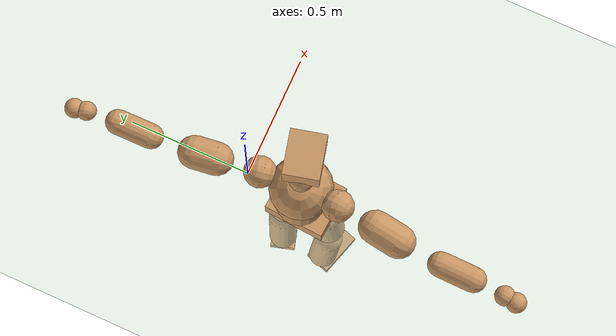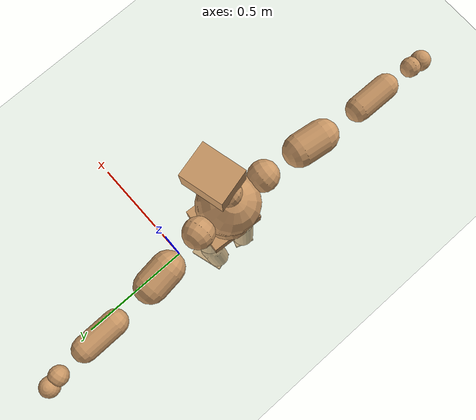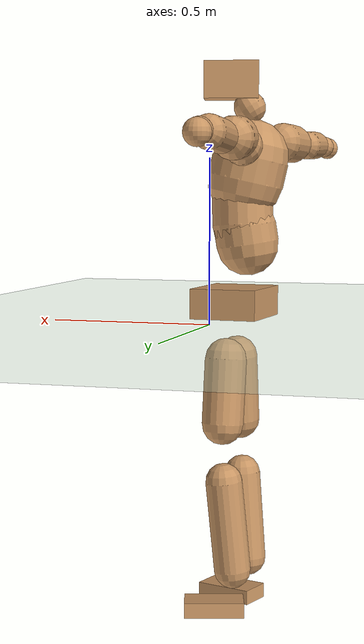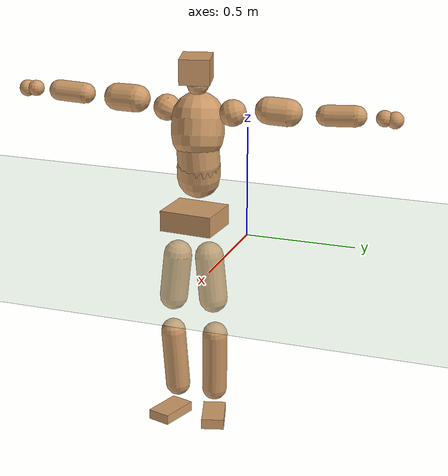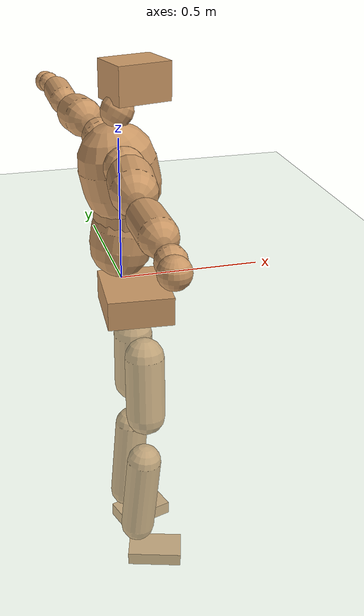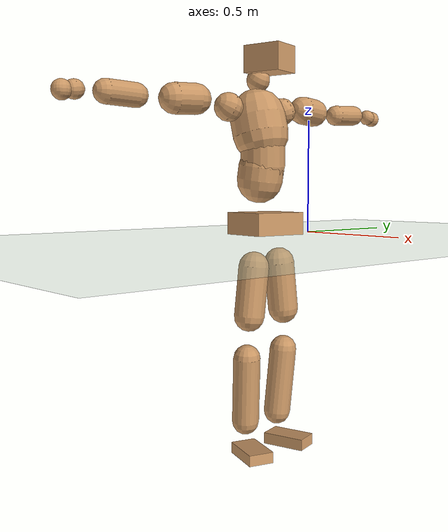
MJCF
<mujoco model="humanoid">
  <compiler coordinate="local" angle="radian"/>
  <default>
    <joint damping="0.0" armature="0.01" stiffness="0.0" limited="true"/>
    <geom conaffinity="1" condim="3" contype="7" margin="0.001" rgba="0.8 0.6 .4 1"/>
  </default>
  <asset>
    <texture type="skybox" builtin="gradient" rgb1=".4 .5 .6" rgb2="0 0 0" width="100" height="100"/>
    <texture builtin="flat" height="1278" mark="cross" markrgb="1 1 1" name="texgeom" random="0.01" rgb1="0.8 0.6 0.4" rgb2="0.8 0.6 0.4" type="cube" width="127"/>
    <texture builtin="checker" height="100" name="texplane" rgb1="0 0 0" rgb2="0.8 0.8 0.8" type="2d" width="100"/>
    <material name="MatPlane" reflectance="0.5" shininess="1" specular="1" texrepeat="60 60" texture="texplane"/>
    <material name="geom" texture="texgeom" texuniform="true"/>
  </asset>
  <worldbody>
    <light cutoff="100" diffuse="1 1 1" dir="-0 0 -1.3" directional="true" exponent="1" pos="0 0 1.3" specular=".1 .1 .1"/>
    <geom conaffinity="1" condim="3" name="floor" pos="0 0 0" rgba="0.8 0.9 0.8 1" size="100 100 .2" type="plane" material="MatPlane"/>
    <body name="Pelvis" pos="-0.0009 -0.2565 0.0553">
      <freejoint name="Pelvis"/>
      <geom type="box" contype="1" conaffinity="1" density="5359.374651" pos="-0.0102 0.0007 -0.0073" size="0.1064 0.1237 0.0477" quat="0.9994 0.0000 0.0000 -0.0351" name="Pelvis"/>
      <body name="L_Hip" pos="-0.0036 0.0656 -0.0861">
        <joint name="L_Hip_x" type="hinge" pos="0 0 0" axis="1 0 0" stiffness="1600" damping="160" armature="0.02" range="-180.0000 180.0000"/>
        <joint name="L_Hip_y" type="hinge" pos="0 0 0" axis="0 1 0" stiffness="1600" damping="160" armature="0.02" range="-180.0000 180.0000"/>
        <joint name="L_Hip_z" type="hinge" pos="0 0 0" axis="0 0 1" stiffness="1600" damping="160" armature="0.02" range="-180.0000 180.0000"/>
        <geom type="capsule" contype="1" conaffinity="1" density="2040.816327" size="0.0658" fromto="0.0018 0.0101 -0.0952 0.0058 0.0320 -0.3008" name="L_Hip"/>
        <body name="L_Knee" pos="0.0076 0.0422 -0.3961">
          <joint name="L_Knee_x" type="hinge" pos="0 0 0" axis="1 0 0" stiffness="1600" damping="160" armature="0.02" range="-180.0000 180.0000"/>
          <joint name="L_Knee_y" type="hinge" pos="0 0 0" axis="0 1 0" stiffness="1600" damping="160" armature="0.02" range="-180.0000 180.0000"/>
          <joint name="L_Knee_z" type="hinge" pos="0 0 0" axis="0 0 1" stiffness="1600" damping="160" armature="0.02" range="-180.0000 180.0000"/>
          <geom type="capsule" contype="1" conaffinity="1" density="1234.567901" size="0.0585" fromto="-0.0079 -0.0033 -0.0881 -0.0339 -0.0143 -0.3764" name="L_Knee"/>
          <body name="L_Ankle" pos="-0.0418 -0.0176 -0.4645">
            <joint name="L_Ankle_x" type="hinge" pos="0 0 0" axis="1 0 0" stiffness="1600" damping="160" armature="0.02" range="-180.0000 180.0000"/>
            <joint name="L_Ankle_y" type="hinge" pos="0 0 0" axis="0 1 0" stiffness="1600" damping="160" armature="0.02" range="-180.0000 180.0000"/>
            <joint name="L_Ankle_z" type="hinge" pos="0 0 0" axis="0 0 1" stiffness="1600" damping="160" armature="0.02" range="-180.0000 180.0000"/>
            <geom type="box" contype="1" conaffinity="1" density="1000.000008" pos="0.0646 0.0192 -0.0317" size="0.0946 0.0525 0.0244" quat="0.9896 0.0000 0.0000 0.1440" name="L_Ankle"/>
            <body name="L_Toe" pos="0.1291 0.0384 -0.0633">
              <joint name="L_Toe_x" type="hinge" pos="0 0 0" axis="1 0 0" stiffness="1000" damping="100" armature="0.02" range="-180.0000 180.0000"/>
              <joint name="L_Toe_y" type="hinge" pos="0 0 0" axis="0 1 0" stiffness="1000" damping="100" armature="0.02" range="-180.0000 180.0000"/>
              <joint name="L_Toe_z" type="hinge" pos="0 0 0" axis="0 0 1" stiffness="1000" damping="100" armature="0.02" range="-180.0000 180.0000"/>
              <geom type="box" contype="1" conaffinity="1" density="8990638.942891" pos="0.0000 0.0000 0.0314" size="0.001 0.0026 0.0012" quat="0.9889 0.0000 0.0000 0.1489" name="L_Toe"/>
            </body>
          </body>
        </body>
      </body>
      <body name="R_Hip" pos="0.0017 -0.0665 -0.0955">
        <joint name="R_Hip_x" type="hinge" pos="0 0 0" axis="1 0 0" stiffness="1600" damping="160" armature="0.02" range="-180.0000 180.0000"/>
        <joint name="R_Hip_y" type="hinge" pos="0 0 0" axis="0 1 0" stiffness="1600" damping="160" armature="0.02" range="-180.0000 180.0000"/>
        <joint name="R_Hip_z" type="hinge" pos="0 0 0" axis="0 0 1" stiffness="1600" damping="160" armature="0.02" range="-180.0000 180.0000"/>
        <geom type="capsule" contype="1" conaffinity="1" density="2040.816327" size="0.0653" fromto="-0.0012 -0.0104 -0.0947 -0.0038 -0.0337 -0.3059" name="R_Hip"/>
        <body name="R_Knee" pos="-0.005 -0.0442 -0.4006">
          <joint name="R_Knee_x" type="hinge" pos="0 0 0" axis="1 0 0" stiffness="1600" damping="160" armature="0.02" range="-180.0000 180.0000"/>
          <joint name="R_Knee_y" type="hinge" pos="0 0 0" axis="0 1 0" stiffness="1600" damping="160" armature="0.02" range="-180.0000 180.0000"/>
          <joint name="R_Knee_z" type="hinge" pos="0 0 0" axis="0 0 1" stiffness="1600" damping="160" armature="0.02" range="-180.0000 180.0000"/>
          <geom type="capsule" contype="1" conaffinity="1" density="1234.567901" size="0.0582" fromto="-0.0072 0.0039 -0.0879 -0.0303 0.0167 -0.3715" name="R_Knee"/>
          <body name="R_Ankle" pos="-0.0374 0.0206 -0.4593">
            <joint name="R_Ankle_x" type="hinge" pos="0 0 0" axis="1 0 0" stiffness="1600" damping="160" armature="0.02" range="-180.0000 180.0000"/>
            <joint name="R_Ankle_y" type="hinge" pos="0 0 0" axis="0 1 0" stiffness="1600" damping="160" armature="0.02" range="-180.0000 180.0000"/>
            <joint name="R_Ankle_z" type="hinge" pos="0 0 0" axis="0 0 1" stiffness="1600" damping="160" armature="0.02" range="-180.0000 180.0000"/>
            <geom type="box" contype="1" conaffinity="1" density="999.999962" pos="0.0673 -0.0205 -0.0336" size="0.0937 0.055 0.0233" quat="0.9891 0.0000 0.0000 -0.1473" name="R_Ankle"/>
            <body name="R_Toe" pos="0.1346 -0.041 -0.0672">
              <joint name="R_Toe_x" type="hinge" pos="0 0 0" axis="1 0 0" stiffness="1000" damping="100" armature="0.02" range="-180.0000 180.0000"/>
              <joint name="R_Toe_y" type="hinge" pos="0 0 0" axis="0 1 0" stiffness="1000" damping="100" armature="0.02" range="-180.0000 180.0000"/>
              <joint name="R_Toe_z" type="hinge" pos="0 0 0" axis="0 0 1" stiffness="1000" damping="100" armature="0.02" range="-180.0000 180.0000"/>
              <geom type="box" contype="1" conaffinity="1" density="8356018.774712" pos="0.0000 0.0000 0.0340" size="0.0012 0.0026 0.0012" quat="0.9904 0.0000 0.0000 -0.1386" name="R_Toe"/>
            </body>
          </body>
        </body>
      </body>
      <body name="Torso" pos="-0.0594 0.0052 0.1376">
        <joint name="Torso_x" type="hinge" pos="0 0 0" axis="1 0 0" stiffness="2000" damping="200" armature="0.02" range="-180.0000 180.0000"/>
        <joint name="Torso_y" type="hinge" pos="0 0 0" axis="0 1 0" stiffness="2000" damping="200" armature="0.02" range="-180.0000 180.0000"/>
        <joint name="Torso_z" type="hinge" pos="0 0 0" axis="0 0 1" stiffness="2000" damping="200" armature="0.02" range="-180.0000 180.0000"/>
        <geom type="capsule" contype="1" conaffinity="1" density="2040.816327" size="0.0993" fromto="0.0150 0.0034 0.0981 0.0062 0.0014 0.0406" name="Torso"/>
        <body name="Spine" pos="0.0212 0.0048 0.1387">
          <joint name="Spine_x" type="hinge" pos="0 0 0" axis="1 0 0" stiffness="2000" damping="200" armature="0.02" range="-180.0000 180.0000"/>
          <joint name="Spine_y" type="hinge" pos="0 0 0" axis="0 1 0" stiffness="2000" damping="200" armature="0.02" range="-180.0000 180.0000"/>
          <joint name="Spine_z" type="hinge" pos="0 0 0" axis="0 0 1" stiffness="2000" damping="200" armature="0.02" range="-180.0000 180.0000"/>
          <geom type="capsule" contype="1" conaffinity="1" density="2040.816327" size="0.0968" fromto="0.0046 -0.0057 0.0965 -0.0019 0.0024 -0.0405" name="Spine"/>
          <body name="Chest" pos="0.0027 -0.0033 0.0561">
            <joint name="Chest_x" type="hinge" pos="0 0 0" axis="1 0 0" stiffness="2000" damping="200" armature="0.02" range="-180.0000 180.0000"/>
            <joint name="Chest_y" type="hinge" pos="0 0 0" axis="0 1 0" stiffness="2000" damping="200" armature="0.02" range="-180.0000 180.0000"/>
            <joint name="Chest_z" type="hinge" pos="0 0 0" axis="0 0 1" stiffness="2000" damping="200" armature="0.02" range="-180.0000 180.0000"/>
            <geom type="capsule" contype="1" conaffinity="1" density="2040.816327" size="0.1204" fromto="-0.0256 -0.0060 0.1175 -0.0094 -0.0022 0.0432" name="Chest"/>
            <body name="Neck" pos="-0.0494 -0.0122 0.2314">
              <joint name="Neck_x" type="hinge" pos="0 0 0" axis="1 0 0" stiffness="1000" damping="100" armature="0.02" range="-180.0000 180.0000"/>
              <joint name="Neck_y" type="hinge" pos="0 0 0" axis="0 1 0" stiffness="1000" damping="100" armature="0.02" range="-180.0000 180.0000"/>
              <joint name="Neck_z" type="hinge" pos="0 0 0" axis="0 0 1" stiffness="1000" damping="100" armature="0.02" range="-180.0000 180.0000"/>
              <geom type="capsule" contype="1" conaffinity="1" density="1000" size="0.0503" fromto="0.0270 0.0060 0.0401 0.0281 0.0062 0.0418" name="Neck"/>
              <body name="Head" pos="0.0551 0.0122 0.0819">
                <joint name="Head_x" type="hinge" pos="0 0 0" axis="1 0 0" stiffness="1000" damping="100" armature="0.02" range="-180.0000 180.0000"/>
                <joint name="Head_y" type="hinge" pos="0 0 0" axis="0 1 0" stiffness="1000" damping="100" armature="0.02" range="-180.0000 180.0000"/>
                <joint name="Head_z" type="hinge" pos="0 0 0" axis="0 0 1" stiffness="1000" damping="100" armature="0.02" range="-180.0000 180.0000"/>
                <geom type="box" contype="1" conaffinity="1" density="2249.999912" pos="0.0285 0.0071 0.0420" size="0.0852 0.0684 0.0574" quat="0.9926 0.0000 0.0000 0.1213" name="Head"/>
              </body>
            </body>
            <body name="L_Thorax" pos="-0.0259 0.0835 0.1263">
              <joint name="L_Thorax_x" type="hinge" pos="0 0 0" axis="1 0 0" stiffness="1000" damping="100" armature="0.02" range="-180.0000 180.0000"/>
              <joint name="L_Thorax_y" type="hinge" pos="0 0 0" axis="0 1 0" stiffness="1000" damping="100" armature="0.02" range="-180.0000 180.0000"/>
              <joint name="L_Thorax_z" type="hinge" pos="0 0 0" axis="0 0 1" stiffness="1000" damping="100" armature="0.02" range="-180.0000 180.0000"/>
              <geom type="capsule" contype="1" conaffinity="1" density="1000" size="0.0611" fromto="-0.0137 0.0683 0.0239 -0.0141 0.0701 0.0245" name="L_Thorax"/>
              <body name="L_Shoulder" pos="-0.0278 0.1384 0.0484">
                <joint name="L_Shoulder_x" type="hinge" pos="0 0 0" axis="1 0 0" stiffness="1000" damping="100" armature="0.02" range="-720.0000 720.0000"/>
                <joint name="L_Shoulder_y" type="hinge" pos="0 0 0" axis="0 1 0" stiffness="1000" damping="100" armature="0.02" range="-720.0000 720.0000"/>
                <joint name="L_Shoulder_z" type="hinge" pos="0 0 0" axis="0 0 1" stiffness="1000" damping="100" armature="0.02" range="-720.0000 720.0000"/>
                <geom type="capsule" contype="1" conaffinity="1" density="1000" size="0.0632" fromto="-0.0108 0.0924 -0.0049 -0.0208 0.1791 -0.0096" name="L_Shoulder"/>
                <body name="L_Elbow" pos="-0.0316 0.2715 -0.0145">
                  <joint name="L_Elbow_x" type="hinge" pos="0 0 0" axis="1 0 0" stiffness="1000" damping="100" armature="0.02" range="-720.0000 720.0000"/>
                  <joint name="L_Elbow_y" type="hinge" pos="0 0 0" axis="0 1 0" stiffness="1000" damping="100" armature="0.02" range="-720.0000 720.0000"/>
                  <joint name="L_Elbow_z" type="hinge" pos="0 0 0" axis="0 0 1" stiffness="1000" damping="100" armature="0.02" range="-720.0000 720.0000"/>
                  <geom type="capsule" contype="1" conaffinity="1" density="1000" size="0.0479" fromto="-0.0015 0.0778 0.0046 -0.0040 0.2098 0.0124" name="L_Elbow"/>
                  <body name="L_Wrist" pos="-0.0054 0.2876 0.017">
                    <joint name="L_Wrist_x" type="hinge" pos="0 0 0" axis="1 0 0" stiffness="600" damping="60" armature="0.02" range="-180.0000 180.0000"/>
                    <joint name="L_Wrist_y" type="hinge" pos="0 0 0" axis="0 1 0" stiffness="600" damping="60" armature="0.02" range="-180.0000 180.0000"/>
                    <joint name="L_Wrist_z" type="hinge" pos="0 0 0" axis="0 0 1" stiffness="600" damping="60" armature="0.02" range="-180.0000 180.0000"/>
                    <geom type="capsule" contype="1" conaffinity="1" density="1000" size="0.0366" fromto="-0.0079 0.0448 -0.0054 -0.0083 0.0468 -0.0057" name="L_Wrist"/>
                    <body name="L_Hand" pos="-0.0162 0.0916 -0.0111">
                      <joint name="L_Hand_x" type="hinge" pos="0 0 0" axis="1 0 0" stiffness="600" damping="60" armature="0.02" range="-180.0000 180.0000"/>
                      <joint name="L_Hand_y" type="hinge" pos="0 0 0" axis="0 1 0" stiffness="600" damping="60" armature="0.02" range="-180.0000 180.0000"/>
                      <joint name="L_Hand_z" type="hinge" pos="0 0 0" axis="0 0 1" stiffness="600" damping="60" armature="0.02" range="-180.0000 180.0000"/>
                      <geom type="sphere" contype="1" conaffinity="1" density="1000" size="0.0377" pos="0.0000 0.0000 0.0000" name="L_Hand"/>
                    </body>
                  </body>
                </body>
              </body>
            </body>
            <body name="R_Thorax" pos="-0.0298 -0.0958 0.1245">
              <joint name="R_Thorax_x" type="hinge" pos="0 0 0" axis="1 0 0" stiffness="1000" damping="100" armature="0.02" range="-180.0000 180.0000"/>
              <joint name="R_Thorax_y" type="hinge" pos="0 0 0" axis="0 1 0" stiffness="1000" damping="100" armature="0.02" range="-180.0000 180.0000"/>
              <joint name="R_Thorax_z" type="hinge" pos="0 0 0" axis="0 0 1" stiffness="1000" damping="100" armature="0.02" range="-180.0000 180.0000"/>
              <geom type="capsule" contype="1" conaffinity="1" density="1000" size="0.0609" fromto="-0.0075 -0.0633 0.0251 -0.0077 -0.0652 0.0258" name="R_Thorax"/>
              <body name="R_Shoulder" pos="-0.0152 -0.1285 0.0509">
                <joint name="R_Shoulder_x" type="hinge" pos="0 0 0" axis="1 0 0" stiffness="1000" damping="100" armature="0.02" range="-720.0000 720.0000"/>
                <joint name="R_Shoulder_y" type="hinge" pos="0 0 0" axis="0 1 0" stiffness="1000" damping="100" armature="0.02" range="-720.0000 720.0000"/>
                <joint name="R_Shoulder_z" type="hinge" pos="0 0 0" axis="0 0 1" stiffness="1000" damping="100" armature="0.02" range="-720.0000 720.0000"/>
                <geom type="capsule" contype="1" conaffinity="1" density="1000" size="0.0638" fromto="-0.0123 -0.0930 -0.0032 -0.0254 -0.1917 -0.0065" name="R_Shoulder"/>
                <body name="R_Elbow" pos="-0.0377 -0.2847 -0.0097">
                  <joint name="R_Elbow_x" type="hinge" pos="0 0 0" axis="1 0 0" stiffness="1000" damping="100" armature="0.02" range="-720.0000 720.0000"/>
                  <joint name="R_Elbow_y" type="hinge" pos="0 0 0" axis="0 1 0" stiffness="1000" damping="100" armature="0.02" range="-720.0000 720.0000"/>
                  <joint name="R_Elbow_z" type="hinge" pos="0 0 0" axis="0 0 1" stiffness="1000" damping="100" armature="0.02" range="-720.0000 720.0000"/>
                  <geom type="capsule" contype="1" conaffinity="1" density="1000" size="0.0486" fromto="-0.0017 -0.0785 0.0022 -0.0045 -0.2102 0.0058" name="R_Elbow"/>
                  <body name="R_Wrist" pos="-0.0062 -0.2887 0.008">
                    <joint name="R_Wrist_x" type="hinge" pos="0 0 0" axis="1 0 0" stiffness="600" damping="60" armature="0.02" range="-180.0000 180.0000"/>
                    <joint name="R_Wrist_y" type="hinge" pos="0 0 0" axis="0 1 0" stiffness="600" damping="60" armature="0.02" range="-180.0000 180.0000"/>
                    <joint name="R_Wrist_z" type="hinge" pos="0 0 0" axis="0 0 1" stiffness="600" damping="60" armature="0.02" range="-180.0000 180.0000"/>
                    <geom type="capsule" contype="1" conaffinity="1" density="1000" size="0.0378" fromto="-0.0052 -0.0466 -0.0046 -0.0054 -0.0486 -0.0048" name="R_Wrist"/>
                    <body name="R_Hand" pos="-0.0106 -0.0952 -0.0094">
                      <joint name="R_Hand_x" type="hinge" pos="0 0 0" axis="1 0 0" stiffness="600" damping="60" armature="0.02" range="-180.0000 180.0000"/>
                      <joint name="R_Hand_y" type="hinge" pos="0 0 0" axis="0 1 0" stiffness="600" damping="60" armature="0.02" range="-180.0000 180.0000"/>
                      <joint name="R_Hand_z" type="hinge" pos="0 0 0" axis="0 0 1" stiffness="600" damping="60" armature="0.02" range="-180.0000 180.0000"/>
                      <geom type="sphere" contype="1" conaffinity="1" density="1000" size="0.0388" pos="0.0000 0.0000 0.0000" name="R_Hand"/>
                    </body>
                  </body>
                </body>
              </body>
            </body>
          </body>
        </body>
      </body>
    </body>
  </worldbody>
  <actuator>
    <motor name="L_Hip_x" joint="L_Hip_x" gear="500"/>
    <motor name="L_Hip_y" joint="L_Hip_y" gear="500"/>
    <motor name="L_Hip_z" joint="L_Hip_z" gear="500"/>
    <motor name="L_Knee_x" joint="L_Knee_x" gear="500"/>
    <motor name="L_Knee_y" joint="L_Knee_y" gear="500"/>
    <motor name="L_Knee_z" joint="L_Knee_z" gear="500"/>
    <motor name="L_Ankle_x" joint="L_Ankle_x" gear="500"/>
    <motor name="L_Ankle_y" joint="L_Ankle_y" gear="500"/>
    <motor name="L_Ankle_z" joint="L_Ankle_z" gear="500"/>
    <motor name="L_Toe_x" joint="L_Toe_x" gear="500"/>
    <motor name="L_Toe_y" joint="L_Toe_y" gear="500"/>
    <motor name="L_Toe_z" joint="L_Toe_z" gear="500"/>
    <motor name="R_Hip_x" joint="R_Hip_x" gear="500"/>
    <motor name="R_Hip_y" joint="R_Hip_y" gear="500"/>
    <motor name="R_Hip_z" joint="R_Hip_z" gear="500"/>
    <motor name="R_Knee_x" joint="R_Knee_x" gear="500"/>
    <motor name="R_Knee_y" joint="R_Knee_y" gear="500"/>
    <motor name="R_Knee_z" joint="R_Knee_z" gear="500"/>
    <motor name="R_Ankle_x" joint="R_Ankle_x" gear="500"/>
    <motor name="R_Ankle_y" joint="R_Ankle_y" gear="500"/>
    <motor name="R_Ankle_z" joint="R_Ankle_z" gear="500"/>
    <motor name="R_Toe_x" joint="R_Toe_x" gear="500"/>
    <motor name="R_Toe_y" joint="R_Toe_y" gear="500"/>
    <motor name="R_Toe_z" joint="R_Toe_z" gear="500"/>
    <motor name="Torso_x" joint="Torso_x" gear="500"/>
    <motor name="Torso_y" joint="Torso_y" gear="500"/>
    <motor name="Torso_z" joint="Torso_z" gear="500"/>
    <motor name="Spine_x" joint="Spine_x" gear="500"/>
    <motor name="Spine_y" joint="Spine_y" gear="500"/>
    <motor name="Spine_z" joint="Spine_z" gear="500"/>
    <motor name="Chest_x" joint="Chest_x" gear="500"/>
    <motor name="Chest_y" joint="Chest_y" gear="500"/>
    <motor name="Chest_z" joint="Chest_z" gear="500"/>
    <motor name="Neck_x" joint="Neck_x" gear="500"/>
    <motor name="Neck_y" joint="Neck_y" gear="500"/>
    <motor name="Neck_z" joint="Neck_z" gear="500"/>
    <motor name="Head_x" joint="Head_x" gear="500"/>
    <motor name="Head_y" joint="Head_y" gear="500"/>
    <motor name="Head_z" joint="Head_z" gear="500"/>
    <motor name="L_Thorax_x" joint="L_Thorax_x" gear="500"/>
    <motor name="L_Thorax_y" joint="L_Thorax_y" gear="500"/>
    <motor name="L_Thorax_z" joint="L_Thorax_z" gear="500"/>
    <motor name="L_Shoulder_x" joint="L_Shoulder_x" gear="500"/>
    <motor name="L_Shoulder_y" joint="L_Shoulder_y" gear="500"/>
    <motor name="L_Shoulder_z" joint="L_Shoulder_z" gear="500"/>
    <motor name="L_Elbow_x" joint="L_Elbow_x" gear="500"/>
    <motor name="L_Elbow_y" joint="L_Elbow_y" gear="500"/>
    <motor name="L_Elbow_z" joint="L_Elbow_z" gear="500"/>
    <motor name="L_Wrist_x" joint="L_Wrist_x" gear="500"/>
    <motor name="L_Wrist_y" joint="L_Wrist_y" gear="500"/>
    <motor name="L_Wrist_z" joint="L_Wrist_z" gear="500"/>
    <motor name="L_Hand_x" joint="L_Hand_x" gear="500"/>
    <motor name="L_Hand_y" joint="L_Hand_y" gear="500"/>
    <motor name="L_Hand_z" joint="L_Hand_z" gear="500"/>
    <motor name="R_Thorax_x" joint="R_Thorax_x" gear="500"/>
    <motor name="R_Thorax_y" joint="R_Thorax_y" gear="500"/>
    <motor name="R_Thorax_z" joint="R_Thorax_z" gear="500"/>
    <motor name="R_Shoulder_x" joint="R_Shoulder_x" gear="500"/>
    <motor name="R_Shoulder_y" joint="R_Shoulder_y" gear="500"/>
    <motor name="R_Shoulder_z" joint="R_Shoulder_z" gear="500"/>
    <motor name="R_Elbow_x" joint="R_Elbow_x" gear="500"/>
    <motor name="R_Elbow_y" joint="R_Elbow_y" gear="500"/>
    <motor name="R_Elbow_z" joint="R_Elbow_z" gear="500"/>
    <motor name="R_Wrist_x" joint="R_Wrist_x" gear="500"/>
    <motor name="R_Wrist_y" joint="R_Wrist_y" gear="500"/>
    <motor name="R_Wrist_z" joint="R_Wrist_z" gear="500"/>
    <motor name="R_Hand_x" joint="R_Hand_x" gear="500"/>
    <motor name="R_Hand_y" joint="R_Hand_y" gear="500"/>
    <motor name="R_Hand_z" joint="R_Hand_z" gear="500"/>
  </actuator>
  <contact>
    <exclude body1="Torso" body2="Chest"/>
    <exclude body1="Head" body2="Chest"/>
    <exclude body1="R_Knee" body2="R_Toe"/>
    <exclude body1="R_Knee" body2="L_Ankle"/>
    <exclude body1="R_Knee" body2="L_Toe"/>
    <exclude body1="L_Knee" body2="L_Toe"/>
    <exclude body1="L_Knee" body2="R_Ankle"/>
    <exclude body1="L_Knee" body2="R_Toe"/>
    <exclude body1="L_Shoulder" body2="Chest"/>
    <exclude body1="R_Shoulder" body2="Chest"/>
  </contact>
  <sensor/>
  <size njmax="700" nconmax="700"/>
</mujoco>
